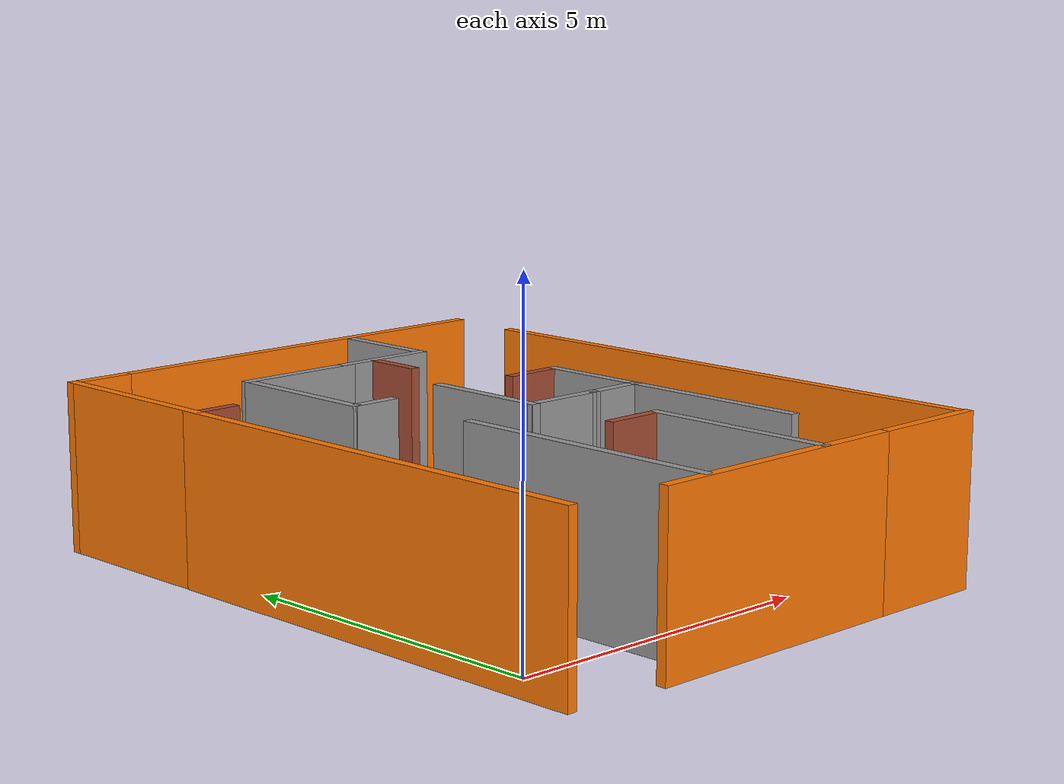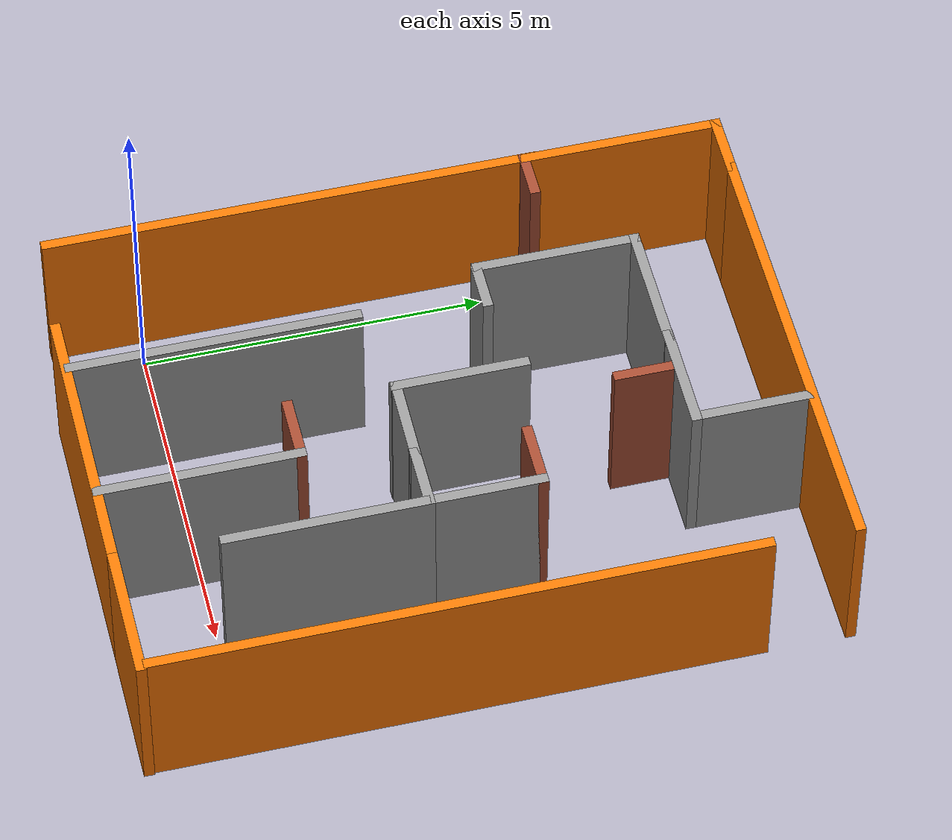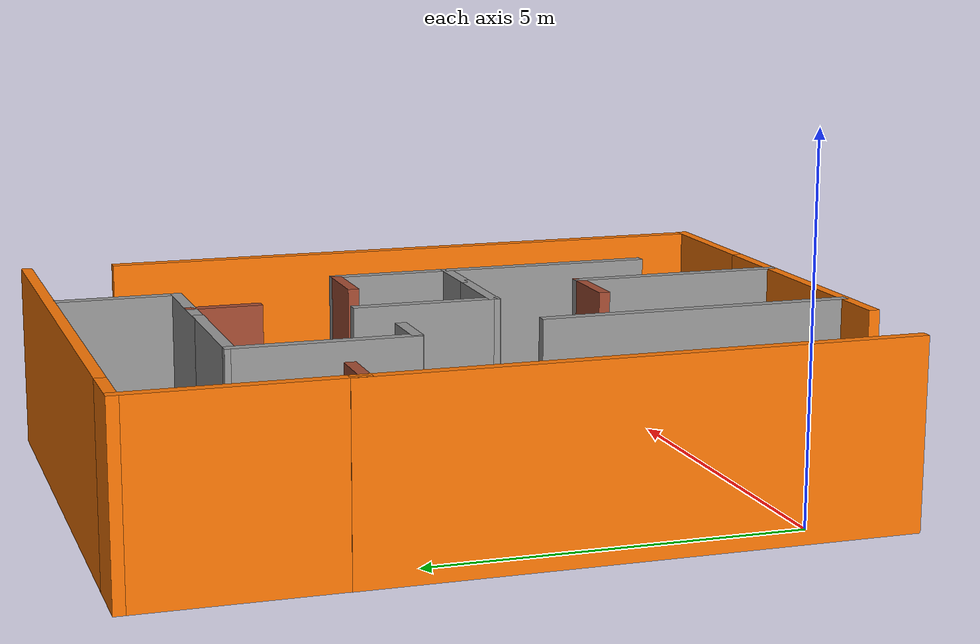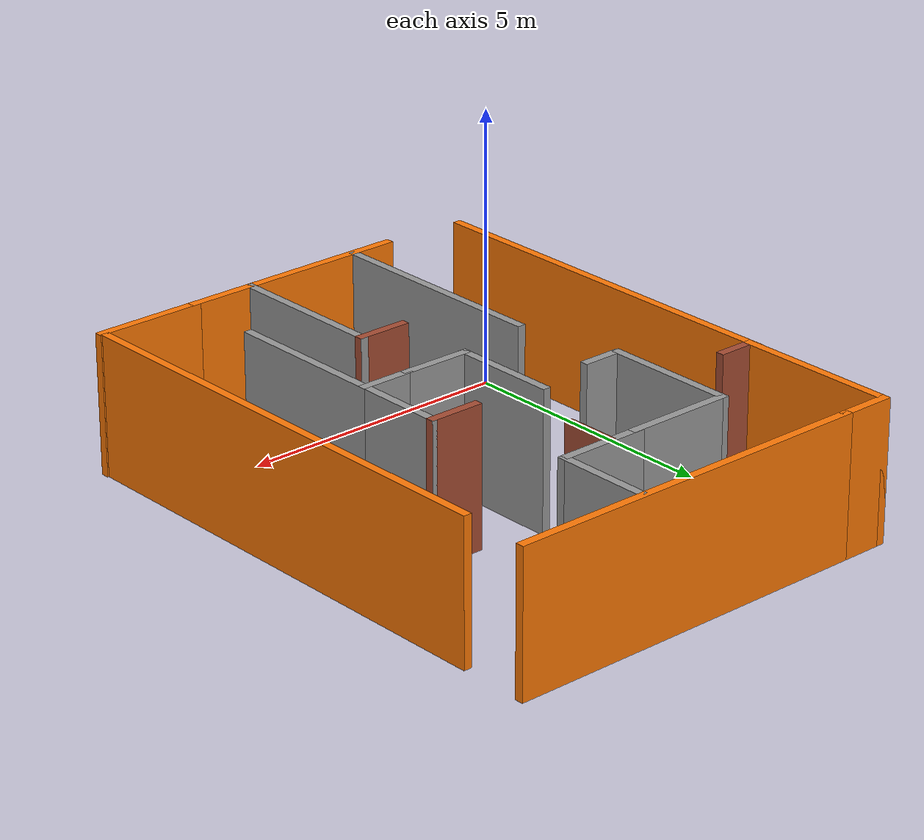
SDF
<?xml version='1.0'?>
<sdf version='1.7'>
  <model name='Maze'>
    <pose>3.25671 3.62145 0 0 -0 0</pose>
    <link name='Wall_21'>
      <collision name='Wall_21_Collision'>
        <geometry>
          <box>
            <size>4.25 0.15 2.5</size>
          </box>
        </geometry>
        <pose>0 0 1.25 0 -0 0</pose>
      </collision>
      <visual name='Wall_21_Visual'>
        <pose>0 0 1.25 0 -0 0</pose>
        <geometry>
          <box>
            <size>4.25 0.15 2.5</size>
          </box>
        </geometry>
        <material>
          <script>
            <uri>file://media/materials/scripts/gazebo.material</uri>
            <name>Gazebo/Grey</name>
          </script>
          <ambient>0.996078 0.47451 0.0196078 1</ambient>
        </material>
        <meta>
          <layer>0</layer>
        </meta>
      </visual>
      <pose>-0.166584 -4.99211 0 0 -0 0</pose>
    </link>
    <link name='Wall_23'>
      <collision name='Wall_23_Collision'>
        <geometry>
          <box>
            <size>4.25 0.15 2.5</size>
          </box>
        </geometry>
        <pose>0 0 1.25 0 -0 0</pose>
      </collision>
      <visual name='Wall_23_Visual'>
        <pose>0 0 1.25 0 -0 0</pose>
        <geometry>
          <box>
            <size>4.25 0.15 2.5</size>
          </box>
        </geometry>
        <material>
          <script>
            <uri>file://media/materials/scripts/gazebo.material</uri>
            <name>Gazebo/Grey</name>
          </script>
          <ambient>0 0 0 1</ambient>
        </material>
        <meta>
          <layer>0</layer>
        </meta>
      </visual>
      <pose>-1.47697 -2.88891 0 0 -0 1.5708</pose>
    </link>
    <link name='Wall_25'>
      <collision name='Wall_25_Collision'>
        <geometry>
          <box>
            <size>7.25 0.15 2.5</size>
          </box>
        </geometry>
        <pose>0 0 1.25 0 -0 0</pose>
      </collision>
      <visual name='Wall_25_Visual'>
        <pose>0 0 1.25 0 -0 0</pose>
        <geometry>
          <box>
            <size>7.25 0.15 2.5</size>
          </box>
        </geometry>
        <material>
          <script>
            <uri>file://media/materials/scripts/gazebo.material</uri>
            <name>Gazebo/Grey</name>
          </script>
          <ambient>0.996078 0.47451 0.0196078 1</ambient>
        </material>
        <meta>
          <layer>0</layer>
        </meta>
      </visual>
      <pose>-3.73341 -1.28759 0 0 -0 1.5708</pose>
    </link>
    <link name='Wall_30'>
      <collision name='Wall_30_Collision'>
        <geometry>
          <box>
            <size>0.75 0.15 2.5</size>
          </box>
        </geometry>
        <pose>0 0 1.25 0 -0 0</pose>
      </collision>
      <visual name='Wall_30_Visual'>
        <pose>0 0 1.25 0 -0 0</pose>
        <geometry>
          <box>
            <size>0.75 0.15 2.5</size>
          </box>
        </geometry>
        <material>
          <script>
            <uri>file://media/materials/scripts/gazebo.material</uri>
            <name>Gazebo/Grey</name>
          </script>
          <ambient>0 0 0 1</ambient>
        </material>
        <meta>
          <layer>0</layer>
        </meta>
      </visual>
      <pose>-1.56741 0.99221 0 0 -0 0</pose>
    </link>
    <link name='Wall_34'>
      <collision name='Wall_34_Collision'>
        <geometry>
          <box>
            <size>1.3428 0.15 2.5</size>
          </box>
        </geometry>
        <pose>0 0 1.25 0 -0 0</pose>
      </collision>
      <visual name='Wall_34_Visual'>
        <pose>0 0 1.25 0 -0 0</pose>
        <geometry>
          <box>
            <size>1.3428 0.15 2.5</size>
          </box>
        </geometry>
        <material>
          <script>
            <uri>file://media/materials/scripts/gazebo.material</uri>
            <name>Gazebo/Grey</name>
          </script>
          <ambient>0 0 0 1</ambient>
        </material>
        <meta>
          <layer>0</layer>
        </meta>
      </visual>
      <pose>0.487086 -0.59755 0 0 -0 -0.009643</pose>
    </link>
    <link name='Wall_35'>
      <collision name='Wall_35_Collision'>
        <geometry>
          <box>
            <size>1 0.15 2.5</size>
          </box>
        </geometry>
        <pose>0 0 1.25 0 -0 0</pose>
      </collision>
      <visual name='Wall_35_Visual'>
        <pose>0 0 1.25 0 -0 0</pose>
        <geometry>
          <box>
            <size>1 0.15 2.5</size>
          </box>
        </geometry>
        <material>
          <script>
            <uri>file://media/materials/scripts/gazebo.material</uri>
            <name>Gazebo/Grey</name>
          </script>
          <ambient>0 0 0 1</ambient>
        </material>
        <meta>
          <layer>0</layer>
        </meta>
      </visual>
      <pose>1.50837 -0.6033 0 0 -0 0</pose>
    </link>
    <link name='Wall_36'>
      <collision name='Wall_36_Collision'>
        <geometry>
          <box>
            <size>1.75 0.15 2.5</size>
          </box>
        </geometry>
        <pose>0 0 1.25 0 -0 0</pose>
      </collision>
      <visual name='Wall_36_Visual'>
        <pose>0 0 1.25 0 -0 0</pose>
        <geometry>
          <box>
            <size>1.75 0.15 2.5</size>
          </box>
        </geometry>
        <material>
          <script>
            <uri>file://media/materials/scripts/gazebo.material</uri>
            <name>Gazebo/Grey</name>
          </script>
          <ambient>0 0 0 1</ambient>
        </material>
        <meta>
          <layer>0</layer>
        </meta>
      </visual>
      <pose>1.93337 0.1967 0 0 -0 1.5708</pose>
    </link>
    <link name='Wall_37'>
      <collision name='Wall_37_Collision'>
        <geometry>
          <box>
            <size>1 0.15 2.5</size>
          </box>
        </geometry>
        <pose>0 0 1.25 0 -0 0</pose>
      </collision>
      <visual name='Wall_37_Visual'>
        <pose>0 0 1.25 0 -0 0</pose>
        <geometry>
          <box>
            <size>1 0.15 2.5</size>
          </box>
        </geometry>
        <material>
          <script>
            <uri>file://media/materials/scripts/gazebo.material</uri>
            <name>Gazebo/Bricks</name>
          </script>
          <ambient>0.435294 0.796078 0.67451 1</ambient>
        </material>
        <meta>
          <layer>0</layer>
        </meta>
      </visual>
      <pose>1.50837 0.9967 0 0 -0 3.14159</pose>
    </link>
    <link name='Wall_39'>
      <collision name='Wall_39_Collision'>
        <geometry>
          <box>
            <size>3 0.15 2.5</size>
          </box>
        </geometry>
        <pose>0 0 1.25 0 -0 0</pose>
      </collision>
      <visual name='Wall_39_Visual'>
        <pose>0 0 1.25 0 -0 0</pose>
        <geometry>
          <box>
            <size>3 0.15 2.5</size>
          </box>
        </geometry>
        <material>
          <script>
            <uri>file://media/materials/scripts/gazebo.material</uri>
            <name>Gazebo/Grey</name>
          </script>
          <ambient>0 0 0 1</ambient>
        </material>
        <meta>
          <layer>0</layer>
        </meta>
      </visual>
      <pose>1.93337 -2.0283 0 0 -0 -1.5708</pose>
    </link>
    <link name='Wall_41'>
      <collision name='Wall_41_Collision'>
        <geometry>
          <box>
            <size>3 0.15 2.5</size>
          </box>
        </geometry>
        <pose>0 0 1.25 0 -0 0</pose>
      </collision>
      <visual name='Wall_41_Visual'>
        <pose>0 0 1.25 0 -0 0</pose>
        <geometry>
          <box>
            <size>3 0.15 2.5</size>
          </box>
        </geometry>
        <material>
          <script>
            <uri>file://media/materials/scripts/gazebo.material</uri>
            <name>Gazebo/Grey</name>
          </script>
          <ambient>0 0 0 1</ambient>
        </material>
        <meta>
          <layer>0</layer>
        </meta>
      </visual>
      <pose>0.727679 -3.55281 0 0 -0 1.5708</pose>
    </link>
    <link name='Wall_43'>
      <collision name='Wall_43_Collision'>
        <geometry>
          <box>
            <size>1 0.15 2.5</size>
          </box>
        </geometry>
        <pose>0 0 1.25 0 -0 0</pose>
      </collision>
      <visual name='Wall_43_Visual'>
        <pose>0 0 1.25 0 -0 0</pose>
        <geometry>
          <box>
            <size>1 0.15 2.5</size>
          </box>
        </geometry>
        <material>
          <script>
            <uri>file://media/materials/scripts/gazebo.material</uri>
            <name>Gazebo/Bricks</name>
          </script>
          <ambient>0.435294 0.796078 0.67451 1</ambient>
        </material>
        <meta>
          <layer>0</layer>
        </meta>
      </visual>
      <pose>0.302679 -2.12782 0 0 -0 3.14159</pose>
    </link>
    <link name='Wall_46'>
      <collision name='Wall_46_Collision'>
        <geometry>
          <box>
            <size>1.64061 0.15 2.5</size>
          </box>
        </geometry>
        <pose>0 0 1.25 0 -0 0</pose>
      </collision>
      <visual name='Wall_46_Visual'>
        <pose>0 0 1.25 0 -0 0</pose>
        <geometry>
          <box>
            <size>1.64061 0.15 2.5</size>
          </box>
        </geometry>
        <material>
          <script>
            <uri>file://media/materials/scripts/gazebo.material</uri>
            <name>Gazebo/Grey</name>
          </script>
          <ambient>0 0 0 1</ambient>
        </material>
        <meta>
          <layer>0</layer>
        </meta>
      </visual>
      <pose>0.633461 3.31645 0 0 -0 0</pose>
    </link>
    <link name='Wall_52'>
      <collision name='Wall_52_Collision'>
        <geometry>
          <box>
            <size>2.44702 0.15 2.5</size>
          </box>
        </geometry>
        <pose>0 0 1.25 0 -0 0</pose>
      </collision>
      <visual name='Wall_52_Visual'>
        <pose>0 0 1.25 0 -0 0</pose>
        <geometry>
          <box>
            <size>2.44702 0.15 2.5</size>
          </box>
        </geometry>
        <material>
          <script>
            <uri>file://media/materials/scripts/gazebo.material</uri>
            <name>Gazebo/Grey</name>
          </script>
          <ambient>0 0 0 1</ambient>
        </material>
        <meta>
          <layer>0</layer>
        </meta>
      </visual>
      <pose>-1.91791 2.16081 0 0 -0 1.56844</pose>
    </link>
    <link name='Wall_53'>
      <collision name='Wall_53_Collision'>
        <geometry>
          <box>
            <size>2 0.15 2.5</size>
          </box>
        </geometry>
        <pose>0 0 1.25 0 -0 0</pose>
      </collision>
      <visual name='Wall_53_Visual'>
        <pose>0 0 1.25 0 -0 0</pose>
        <geometry>
          <box>
            <size>2 0.15 2.5</size>
          </box>
        </geometry>
        <material>
          <script>
            <uri>file://media/materials/scripts/gazebo.material</uri>
            <name>Gazebo/Grey</name>
          </script>
          <ambient>0 0 0 1</ambient>
        </material>
        <meta>
          <layer>0</layer>
        </meta>
      </visual>
      <pose>-0.99021 3.30921 0 0 -0 0</pose>
    </link>
    <link name='Wall_61'>
      <collision name='Wall_61_Collision'>
        <geometry>
          <box>
            <size>1 0.15 2.5</size>
          </box>
        </geometry>
        <pose>0 0 1.25 0 -0 0</pose>
      </collision>
      <visual name='Wall_61_Visual'>
        <pose>0 0 1.25 0 -0 0</pose>
        <geometry>
          <box>
            <size>1 0.15 2.5</size>
          </box>
        </geometry>
        <material>
          <script>
            <uri>file://media/materials/scripts/gazebo.material</uri>
            <name>Gazebo/Grey</name>
          </script>
          <ambient>0.996078 0.47451 0.0196078 1</ambient>
        </material>
        <meta>
          <layer>0</layer>
        </meta>
      </visual>
      <pose>-3.30144 4.99211 0 0 -0 3.14159</pose>
    </link>
    <link name='Wall_63'>
      <collision name='Wall_63_Collision'>
        <geometry>
          <box>
            <size>3 0.15 2.5</size>
          </box>
        </geometry>
        <pose>0 0 1.25 0 -0 0</pose>
      </collision>
      <visual name='Wall_63_Visual'>
        <pose>0 0 1.25 0 -0 0</pose>
        <geometry>
          <box>
            <size>3 0.15 2.5</size>
          </box>
        </geometry>
        <material>
          <script>
            <uri>file://media/materials/scripts/gazebo.material</uri>
            <name>Gazebo/Grey</name>
          </script>
          <ambient>0.996078 0.47451 0.0196078 1</ambient>
        </material>
        <meta>
          <layer>0</layer>
        </meta>
      </visual>
      <pose>-3.72644 3.56711 0 0 -0 -1.5708</pose>
    </link>
    <link name='Wall_65'>
      <collision name='Wall_65_Collision'>
        <geometry>
          <box>
            <size>6.75 0.15 2.5</size>
          </box>
        </geometry>
        <pose>0 0 1.25 0 -0 0</pose>
      </collision>
      <visual name='Wall_65_Visual'>
        <pose>0 0 1.25 0 -0 0</pose>
        <geometry>
          <box>
            <size>6.75 0.15 2.5</size>
          </box>
        </geometry>
        <material>
          <script>
            <uri>file://media/materials/scripts/gazebo.material</uri>
            <name>Gazebo/Grey</name>
          </script>
          <ambient>0.996078 0.47451 0.0196078 1</ambient>
        </material>
        <meta>
          <layer>0</layer>
        </meta>
      </visual>
      <pose>0.42356 4.99211 0 0 -0 0</pose>
    </link>
    <link name='Wall_67'>
      <collision name='Wall_67_Collision'>
        <geometry>
          <box>
            <size>8.75 0.15 2.5</size>
          </box>
        </geometry>
        <pose>0 0 1.25 0 -0 0</pose>
      </collision>
      <visual name='Wall_67_Visual'>
        <pose>0 0 1.25 0 -0 0</pose>
        <geometry>
          <box>
            <size>8.75 0.15 2.5</size>
          </box>
        </geometry>
        <material>
          <script>
            <uri>file://media/materials/scripts/gazebo.material</uri>
            <name>Gazebo/Grey</name>
          </script>
          <ambient>0.996078 0.47451 0.0196078 1</ambient>
        </material>
        <meta>
          <layer>0</layer>
        </meta>
      </visual>
      <pose>3.70855 -0.575644 0 0 -0 -1.5708</pose>
    </link>
    <link name='Wall_69'>
      <collision name='Wall_69_Collision'>
        <geometry>
          <box>
            <size>2 0.15 2.5</size>
          </box>
        </geometry>
        <pose>0 0 1.25 0 -0 0</pose>
      </collision>
      <visual name='Wall_69_Visual'>
        <pose>0 0 1.25 0 -0 0</pose>
        <geometry>
          <box>
            <size>2 0.15 2.5</size>
          </box>
        </geometry>
        <material>
          <script>
            <uri>file://media/materials/scripts/gazebo.material</uri>
            <name>Gazebo/Grey</name>
          </script>
          <ambient>0.996078 0.47451 0.0196078 1</ambient>
        </material>
        <meta>
          <layer>0</layer>
        </meta>
      </visual>
      <pose>2.80842 -4.99211 0 0 -0 0</pose>
    </link>
    <link name='Wall_71'>
      <collision name='Wall_71_Collision'>
        <geometry>
          <box>
            <size>0.75 0.15 2.5</size>
          </box>
        </geometry>
        <pose>0 0 1.25 0 -0 0</pose>
      </collision>
      <visual name='Wall_71_Visual'>
        <pose>0 0 1.25 0 -0 0</pose>
        <geometry>
          <box>
            <size>0.75 0.15 2.5</size>
          </box>
        </geometry>
        <material>
          <script>
            <uri>file://media/materials/scripts/gazebo.material</uri>
            <name>Gazebo/Bricks</name>
          </script>
          <ambient>0 0 0 1</ambient>
        </material>
        <meta>
          <layer>0</layer>
        </meta>
      </visual>
      <pose>-3.42644 2.14211 0 0 -0 0</pose>
    </link>
    <link name='Wall_73'>
      <collision name='Wall_73_Collision'>
        <geometry>
          <box>
            <size>2 0.15 2.5</size>
          </box>
        </geometry>
        <pose>0 0 1.25 0 -0 0</pose>
      </collision>
      <visual name='Wall_73_Visual'>
        <pose>0 0 1.25 0 -0 0</pose>
        <geometry>
          <box>
            <size>2 0.15 2.5</size>
          </box>
        </geometry>
        <material>
          <script>
            <uri>file://media/materials/scripts/gazebo.material</uri>
            <name>Gazebo/Grey</name>
          </script>
          <ambient>0 0 0 1</ambient>
        </material>
        <meta>
          <layer>0</layer>
        </meta>
      </visual>
      <pose>-0.109202 0.3217 0 0 -0 1.5708</pose>
    </link>
    <link name='Wall_79'>
      <collision name='Wall_79_Collision'>
        <geometry>
          <box>
            <size>1.75 0.15 2.5</size>
          </box>
        </geometry>
        <pose>0 0 1.25 0 -0 0</pose>
      </collision>
      <visual name='Wall_79_Visual'>
        <pose>0 0 1.25 0 -0 0</pose>
        <geometry>
          <box>
            <size>1.75 0.15 2.5</size>
          </box>
        </geometry>
        <material>
          <script>
            <uri>file://media/materials/scripts/gazebo.material</uri>
            <name>Gazebo/Grey</name>
          </script>
          <ambient>0 0 0 1</ambient>
        </material>
        <meta>
          <layer>0</layer>
        </meta>
      </visual>
      <pose>1.37874 4.11646 0 0 -0 1.5708</pose>
    </link>
    <link name='Wall_81'>
      <collision name='Wall_81_Collision'>
        <geometry>
          <box>
            <size>1 0.15 2.5</size>
          </box>
        </geometry>
        <pose>0 0 1.25 0 -0 0</pose>
      </collision>
      <visual name='Wall_81_Visual'>
        <pose>0 0 1.25 0 -0 0</pose>
        <geometry>
          <box>
            <size>1 0.15 2.5</size>
          </box>
        </geometry>
        <material>
          <script>
            <uri>file://media/materials/scripts/gazebo.material</uri>
            <name>Gazebo/Bricks</name>
          </script>
          <ambient>0.435294 0.796078 0.67451 1</ambient>
        </material>
        <meta>
          <layer>0</layer>
        </meta>
      </visual>
      <pose>0.438493 2.88286 0 0 -0 -1.5708</pose>
    </link>
    <static>1</static>
  </model>
</sdf>
